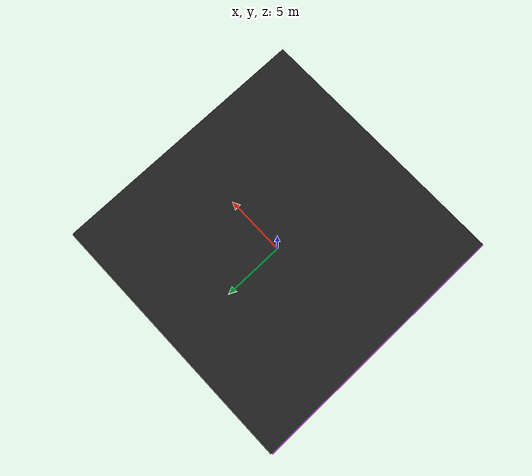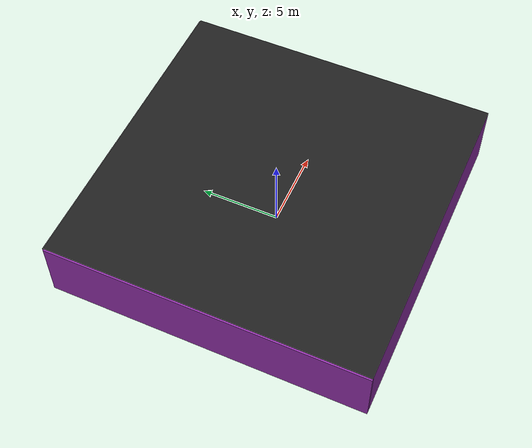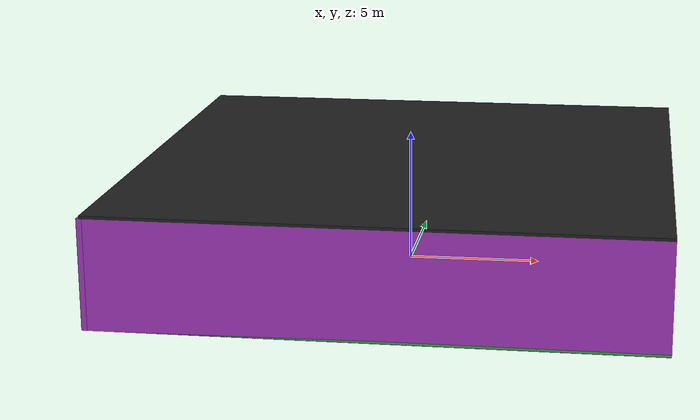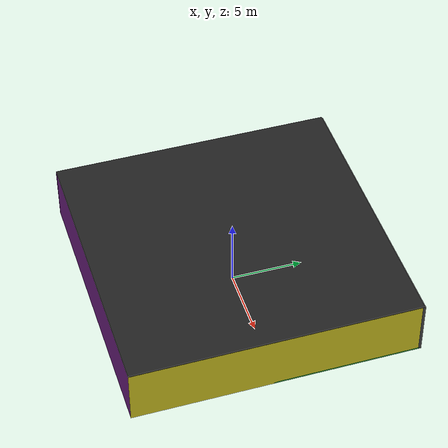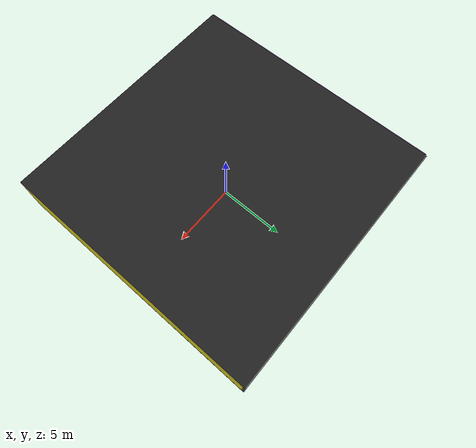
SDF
<sdf version="1.4">
 <world name="default">
  <physics type="ode">
   <max_step_size>0.001</max_step_size>
   <real_time_factor>1</real_time_factor>
   <real_time_update_rate>1000</real_time_update_rate>
   <gravity>0 0 -9.8</gravity>
  </physics>
  <scene><ambient>0.4 0.4 0.4 1</ambient><background>0.7 0.7 0.7 1</background><shadows>1</shadows></scene>
  <model name="Surrounding">
   <static>1</static>
   <link name="Ceiling">
    <collision name="Ceiling_Collision"><geometry><box><size>20 20 0.1</size></box></geometry></collision>
    <visual name="Ceiling_Visual">
     <geometry><box><size>20 20 0.1</size></box></geometry>
     <material>
      <script><uri>file://media/materials/scripts/gazebo.material</uri><name>Gazebo/FlatBlack</name></script>
     </material>
    </visual>
    <pose>0 0 4.05 0 0 0</pose>
   </link>
   <link name="Wall_South">
    <collision name="Wall_South_Collision">
     <geometry><box><size>20 0 4</size></box></geometry>
     <pose>0 0 2 0 -0 0</pose>
    </collision>
    <visual name="Wall_South_Visual">
     <pose>0 0 2 0 -0 0</pose>
     <geometry><box><size>20 0 4</size></box></geometry>
     <material>
      <script><uri>file://media/materials/scripts/gazebo.material</uri><name>Gazebo/Purple</name></script>
     </material>
    </visual>
    <velocity_decay><linear>0</linear><angular>0</angular></velocity_decay>
    <pose>0 -10 0 0 -0 0</pose>
   </link>
   <link name="Wall_East">
    <collision name="Wall_21_Collision">
     <geometry><box><size>20 0 4</size></box></geometry>
     <pose>0 0 2 0 -0 0</pose>
    </collision>
    <visual name="Wall_21_Visual">
     <pose>0 0 2 0 -0 0</pose>
     <geometry><box><size>20 0 4</size></box></geometry>
     <material>
      <script><uri>file://media/materials/scripts/gazebo.material</uri><name>Gazebo/Yellow</name></script>
     </material>
    </visual>
    <velocity_decay><linear>0</linear><angular>0</angular></velocity_decay>
    <pose>10 0 0 0 -0 1.5708</pose>
   </link>
   <link name="Wall_North">
    <collision name="Wall_22_Collision">
     <geometry><box><size>20 0.2 4</size></box></geometry>
     <pose>0 0 2 0 -0 0</pose>
    </collision>
    <visual name="Wall_22_Visual">
     <pose>0 0 2 0 -0 0</pose>
     <geometry><box><size>20 0.2 4</size></box></geometry>
     <material>
      <script><uri>file://media/materials/scripts/gazebo.material</uri><name>Gazebo/DarkGrey</name></script>
     </material>
    </visual>
    <velocity_decay><linear>0</linear><angular>0</angular></velocity_decay>
    <pose>0 10 0 0 -0 0</pose>
   </link>
   <link name="Wall_West">
    <collision name="Wall_23_Collision">
     <geometry><box><size>20 0.2 4</size></box></geometry>
     <pose>0 0 2 0 -0 0</pose>
    </collision>
    <visual name="Wall_23_Visual">
     <pose>0 0 2 0 -0 0</pose>
     <geometry><box><size>20 0.2 4</size></box></geometry>
     <material>
      <script><uri>file://media/materials/scripts/gazebo.material</uri><name>Gazebo/PurpleGlow</name></script>
     </material>
    </visual>
    <velocity_decay><linear>0</linear><angular>0</angular></velocity_decay>
    <pose>-10 0 0 0 0 -1.5708</pose>
   </link>
   <link name="Ground_link">
    <collision name="collision">
     <pose>0 0 .05 0 -0 0</pose>
     <geometry><box><size>20 20 0.1</size></box></geometry>
    </collision>
    <visual name="visual">
     <pose>0 0 .05 0 -0 0</pose>
     <geometry><box><size>20 20 0.1</size></box></geometry>
     <material>
      <script><uri>file://media/materials/scripts/gazebo.material</uri><name>Gazebo/Green</name></script>
     </material>
    </visual>
   </link>
   <static>1</static>
  </model>
  <spherical_coordinates>
   <surface_model>EARTH_WGS84</surface_model>
   <latitude_deg>0</latitude_deg>
   <longitude_deg>0</longitude_deg>
   <elevation>0</elevation>
   <heading_deg>0</heading_deg>
  </spherical_coordinates>
  <light name="lightball_0" type="diffuse">
   <diffuse>0.8 0.8 0.8 1</diffuse>
   <specular>0.2 0.2 0.2 1</specular>
   <attenuation>
    <range>100</range>
    <constant>0.7</constant>
    <linear>0.01</linear>
    <quadratic>0.001</quadratic>
   </attenuation>
   <direction>-0.5 0.1 -0.9</direction>
   <pose>-5.14773138576 -1.87712788263 0.657691468126 0 0 0</pose>
  </light>
  <light name="lightball_1" type="diffuse">
   <diffuse>0.8 0.8 0.8 1</diffuse>
   <specular>0.2 0.2 0.2 1</specular>
   <attenuation>
    <range>100</range>
    <constant>0.7</constant>
    <linear>0.01</linear>
    <quadratic>0.001</quadratic>
   </attenuation>
   <direction>-0.5 0.1 -0.9</direction>
   <pose>-1.1696634024 5.22243305762 2.33712202223 0 0 0</pose>
  </light>
  <light name="lightball_2" type="diffuse">
   <diffuse>0.8 0.8 0.8 1</diffuse>
   <specular>0.2 0.2 0.2 1</specular>
   <attenuation>
    <range>100</range>
    <constant>0.7</constant>
    <linear>0.01</linear>
    <quadratic>0.001</quadratic>
   </attenuation>
   <direction>-0.5 0.1 -0.9</direction>
   <pose>7.00077022673 -8.47623498892 1.32928406879 0 0 0</pose>
  </light>
  <light name="lightball_3" type="diffuse">
   <diffuse>0.8 0.8 0.8 1</diffuse>
   <specular>0.2 0.2 0.2 1</specular>
   <attenuation>
    <range>100</range>
    <constant>0.7</constant>
    <linear>0.01</linear>
    <quadratic>0.001</quadratic>
   </attenuation>
   <direction>-0.5 0.1 -0.9</direction>
   <pose>4.27257381447 9.38952169893 1.46025233807 0 0 0</pose>
  </light>
  <light name="lightball_4" type="diffuse">
   <diffuse>0.8 0.8 0.8 1</diffuse>
   <specular>0.2 0.2 0.2 1</specular>
   <attenuation>
    <range>100</range>
    <constant>0.7</constant>
    <linear>0.01</linear>
    <quadratic>0.001</quadratic>
   </attenuation>
   <direction>-0.5 0.1 -0.9</direction>
   <pose>-3.43067930881 9.24546594722 2.47146694262 0 0 0</pose>
  </light>
  <light name="lightball_5" type="diffuse">
   <diffuse>0.8 0.8 0.8 1</diffuse>
   <specular>0.2 0.2 0.2 1</specular>
   <attenuation>
    <range>100</range>
    <constant>0.7</constant>
    <linear>0.01</linear>
    <quadratic>0.001</quadratic>
   </attenuation>
   <direction>-0.5 0.1 -0.9</direction>
   <pose>0.447605412674 9.72775631199 1.15513431507 0 0 0</pose>
  </light>
  <light name="lightball_6" type="diffuse">
   <diffuse>0.8 0.8 0.8 1</diffuse>
   <specular>0.2 0.2 0.2 1</specular>
   <attenuation>
    <range>100</range>
    <constant>0.7</constant>
    <linear>0.01</linear>
    <quadratic>0.001</quadratic>
   </attenuation>
   <direction>-0.5 0.1 -0.9</direction>
   <pose>-3.49922795746 1.12523130487 1.98321750538 0 0 0</pose>
  </light>
  <light name="lightball_7" type="diffuse">
   <diffuse>0.8 0.8 0.8 1</diffuse>
   <specular>0.2 0.2 0.2 1</specular>
   <attenuation>
    <range>100</range>
    <constant>0.7</constant>
    <linear>0.01</linear>
    <quadratic>0.001</quadratic>
   </attenuation>
   <direction>-0.5 0.1 -0.9</direction>
   <pose>5.09430304238 -0.0443334655174 2.48597865713 0 0 0</pose>
  </light>
  <light name="lightball_8" type="diffuse">
   <diffuse>0.8 0.8 0.8 1</diffuse>
   <specular>0.2 0.2 0.2 1</specular>
   <attenuation>
    <range>100</range>
    <constant>0.7</constant>
    <linear>0.01</linear>
    <quadratic>0.001</quadratic>
   </attenuation>
   <direction>-0.5 0.1 -0.9</direction>
   <pose>-7.07773951061 1.68498204723 1.46203014796 0 0 0</pose>
  </light>
  <light name="lightball_9" type="diffuse">
   <diffuse>0.8 0.8 0.8 1</diffuse>
   <specular>0.2 0.2 0.2 1</specular>
   <attenuation>
    <range>100</range>
    <constant>0.7</constant>
    <linear>0.01</linear>
    <quadratic>0.001</quadratic>
   </attenuation>
   <direction>-0.5 0.1 -0.9</direction>
   <pose>0.218848357664 -3.74876738879 1.61578179737 0 0 0</pose>
  </light>
  <light name="lightball_10" type="diffuse">
   <diffuse>0.8 0.8 0.8 1</diffuse>
   <specular>0.2 0.2 0.2 1</specular>
   <attenuation>
    <range>100</range>
    <constant>0.7</constant>
    <linear>0.01</linear>
    <quadratic>0.001</quadratic>
   </attenuation>
   <direction>-0.5 0.1 -0.9</direction>
   <pose>-2.59472211591 0.597510761552 3.77291135786 0 0 0</pose>
  </light>
  <include>
   <uri>model://robocup_3Dsim_goal</uri>
   <pose>4.47897893294 -4.3894454863 0 0 0 1.99908277797</pose>
  </include>
 </world>
</sdf>

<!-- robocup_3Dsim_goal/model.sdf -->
<sdf version="1.5">
  <model name="robocup_3d_goal">
    <static>true</static>
    <link name="left_post">
      <pose>0 1.05 0.45 0 0 0</pose>
      <collision name="collision">
        <geometry>
          <cylinder>
            <radius>0.05</radius>
            <length>0.9</length>
          </cylinder>
        </geometry>
      </collision>
      <visual name="visual">
        <geometry>
          <cylinder>
            <radius>0.05</radius>
            <length>0.9</length>
          </cylinder>
        </geometry>
        <material>
          <script>
            <uri>file://media/materials/scripts/gazebo.material</uri>
            <name>Gazebo/ZincYellow</name>
          </script>
        </material>
      </visual>
    </link>
    <link name="left_support_horiz_lower">
      <pose>0.30 1.05 0.01 0 0 0</pose>
      <collision name="collision">
        <geometry>
          <box>
            <size>0.50 0.02 0.02</size>
          </box>
        </geometry>
      </collision>
      <visual name="visual">
        <geometry>
          <box>
            <size>0.50 0.02 0.02</size>
          </box>
        </geometry>
        <material>
          <script>
            <uri>file://media/materials/scripts/gazebo.material</uri>
            <name>Gazebo/White</name>
          </script>
        </material>
      </visual>
    </link>
    <link name="left_support_horiz_upper">
      <pose>0.30 1.05 0.79 0 0 0</pose>
      <collision name="collision">
        <geometry>
          <box>
            <size>0.50 0.02 0.02</size>
          </box>
        </geometry>
      </collision>
      <visual name="visual">
        <geometry>
          <box>
            <size>0.50 0.02 0.02</size>
          </box>
        </geometry>
        <material>
          <script>
            <uri>file://media/materials/scripts/gazebo.material</uri>
            <name>Gazebo/White</name>
          </script>
        </material>
      </visual>
    </link>
    <link name="left_support_vertical">
      <pose>0.56 1.05 0.4 0 1.5708 0</pose>
      <collision name="collision">
        <geometry>
          <box>
            <size>0.80 0.02 0.02</size>
          </box>
        </geometry>
      </collision>
      <visual name="visual">
        <geometry>
          <box>
            <size>0.80 0.02 0.02</size>
          </box>
        </geometry>
        <material>
          <script>
            <uri>file://media/materials/scripts/gazebo.material</uri>
            <name>Gazebo/White</name>
          </script>
        </material>
      </visual>
    </link>
    <link name="right_support_horiz_lower">
      <pose>0.30 -1.05 0.01 0 0 0</pose>
      <collision name="collision">
        <geometry>
          <box>
            <size>0.50 0.02 0.02</size>
          </box>
        </geometry>
      </collision>
      <visual name="visual">
        <geometry>
          <box>
            <size>0.50 0.02 0.02</size>
          </box>
        </geometry>
        <material>
          <script>
            <uri>file://media/materials/scripts/gazebo.material</uri>
            <name>Gazebo/White</name>
          </script>
        </material>
      </visual>
    </link>
    <link name="right_support_horiz_upper">
      <pose>0.30 -1.05 0.79 0 0 0</pose>
      <collision name="collision">
        <geometry>
          <box>
            <size>0.50 0.02 0.02</size>
          </box>
        </geometry>
      </collision>
      <visual name="visual">
        <geometry>
          <box>
            <size>0.50 0.02 0.02</size>
          </box>
        </geometry>
        <material>
          <script>
            <uri>file://media/materials/scripts/gazebo.material</uri>
            <name>Gazebo/White</name>
          </script>
        </material>
      </visual>
    </link>
    <link name="right_support_vertical">
      <pose>0.56 -1.05 0.4 0 1.5708 0</pose>
      <collision name="collision">
        <geometry>
          <box>
            <size>0.80 0.02 0.02</size>
          </box>
        </geometry>
      </collision>
      <visual name="visual">
        <geometry>
          <box>
            <size>0.80 0.02 0.02</size>
          </box>
        </geometry>
        <material>
          <script>
            <uri>file://media/materials/scripts/gazebo.material</uri>
            <name>Gazebo/White</name>
          </script>
        </material>
      </visual>
    </link>
    <link name="center_support_horiz_lower">
      <pose>0.56 0 0.01 0 1.5708 0</pose>
      <collision name="collision">
        <geometry>
          <box>
            <size>0.02 2.08 0.02</size>
          </box>
        </geometry>
      </collision>
      <visual name="visual">
        <geometry>
          <box>
            <size>0.02 2.08 0.02</size>
          </box>
        </geometry>
        <material>
          <script>
            <uri>file://media/materials/scripts/gazebo.material</uri>
            <name>Gazebo/White</name>
          </script>
        </material>
      </visual>
    </link>
    <link name="center_support_horiz_upper">
      <pose>0.56 0 0.79 0 1.5708 0</pose>
      <collision name="collision">
        <geometry>
          <box>
            <size>0.02 2.08 0.02</size>
          </box>
        </geometry>
      </collision>
      <visual name="visual">
        <geometry>
          <box>
            <size>0.02 2.08 0.02</size>
          </box>
        </geometry>
        <material>
          <script>
            <uri>file://media/materials/scripts/gazebo.material</uri>
            <name>Gazebo/White</name>
          </script>
        </material>
      </visual>
    </link>
    <link name="right_post">
      <pose>0 -1.05 0.45 0 0 0</pose>
      <collision name="collision">
        <geometry>
          <cylinder>
            <radius>0.05</radius>
            <length>0.9</length>
          </cylinder>
        </geometry>
      </collision>
      <visual name="visual">
        <geometry>
          <cylinder>
            <radius>0.05</radius>
            <length>0.9</length>
          </cylinder>
        </geometry>
        <material>
          <script>
            <uri>file://media/materials/scripts/gazebo.material</uri>
            <name>Gazebo/ZincYellow</name>
          </script>
        </material>
      </visual>
    </link>
    <link name="crossbar">
      <pose>0 0 0.85 1.57 1.57 0</pose>
      <collision name="collision">
        <geometry>
          <cylinder>
            <radius>0.05</radius>
            <length>2.0</length>
          </cylinder>
        </geometry>
      </collision>
      <visual name="visual">
        <geometry>
          <cylinder>
            <radius>0.05</radius>
            <length>2.0</length>
          </cylinder>
        </geometry>
        <material>
          <script>
            <uri>file://media/materials/scripts/gazebo.material</uri>
            <name>Gazebo/ZincYellow</name>
          </script>
        </material>
      </visual>
    </link>
    <link name="center_net">
      <pose>0.56 0 0.40 0 0 0</pose>
      <collision name="collision">
        <geometry>
          <box>
            <size>0.01 2.1 0.80</size>
          </box>
        </geometry>
      </collision>
      <visual name="visual">
        <geometry>
          <box>
            <size>0.01 2.1 0.80</size>
          </box>
        </geometry>
        <material>
          <script>
            <uri>model://../model_source/models/robocup09_spl_field/materials/scripts/</uri>
            <uri>model://../model_source/models/robocup09_spl_field/materials/textures/</uri>
            <name>RoboCup/Net</name>
          </script>
        </material>
      </visual>
    </link>
    <link name="left_net">
      <pose>0.30 1.05 0.40 0 0 0</pose>
      <collision name="collision">
        <geometry>
          <box>
            <size>0.50 0.01 0.76</size>
          </box>
        </geometry>
      </collision>
      <visual name="visual">
        <geometry>
          <box>
            <size>0.50 0.01 0.76</size>
          </box>
        </geometry>
        <material>
          <script>
            <uri>model://../model_source/models/robocup09_spl_field/materials/scripts/</uri>
            <uri>model://../model_source/models/robocup09_spl_field/materials/textures/</uri>
            <name>RoboCup/Net</name>
          </script>
        </material>
      </visual>
    </link>
    <link name="right_net">
      <pose>0.30 -1.05 0.40 0 0 0</pose>
      <collision name="collision">
        <geometry>
          <box>
            <size>0.50 0.01 0.76</size>
          </box>
        </geometry>
      </collision>
      <visual name="visual">
        <geometry>
          <box>
            <size>0.50 0.01 0.76</size>
          </box>
        </geometry>
        <material>
          <script>
            <uri>model://../model_source/models/robocup09_spl_field/materials/scripts/</uri>
            <uri>model://../model_source/models/robocup09_spl_field/materials/textures/</uri>
            <name>RoboCup/Net</name>
          </script>
        </material>
      </visual>
    </link>
  </model>
</sdf>
